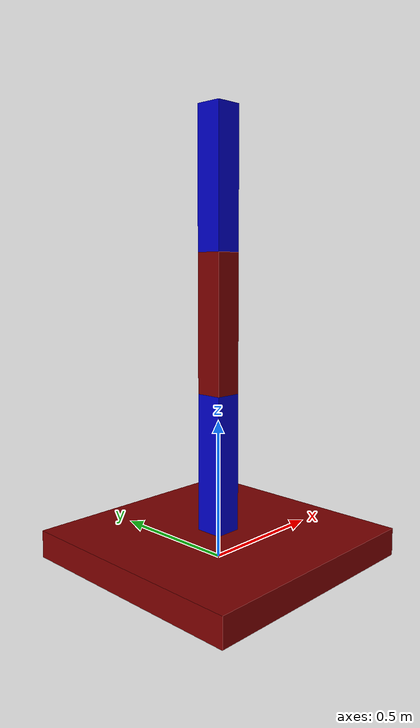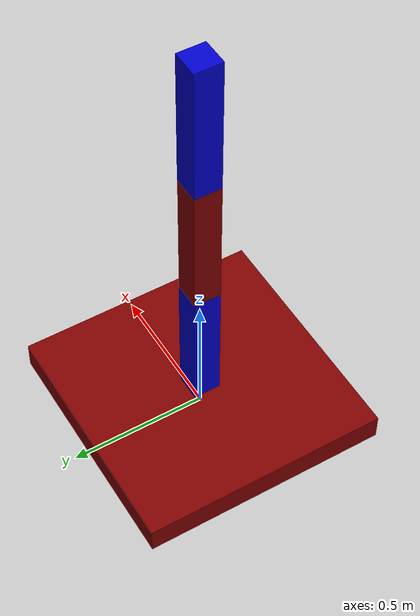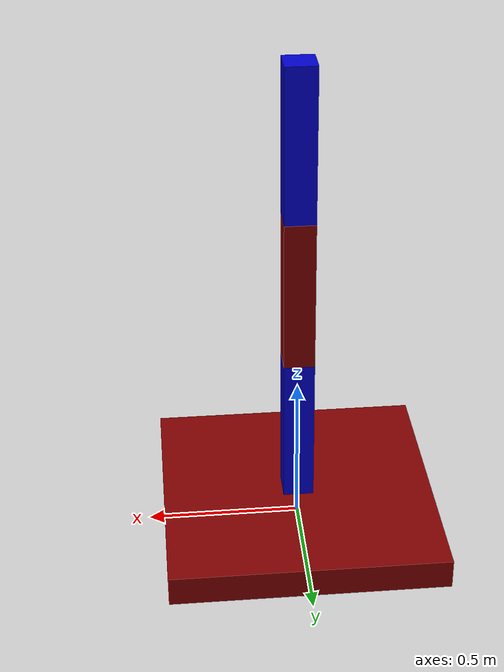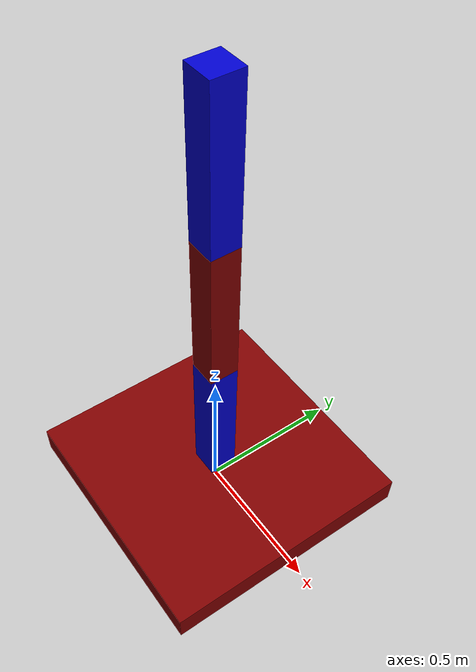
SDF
<?xml version="1.0" ?>

<sdf version="1.9">

    <model name="arm3dof">

      <link name="govde">
        <pose> 0 0 0.05 0 0 0</pose>

        <visual name="v_govde">
          <geometry><box><size>0.9 0.9 0.1</size></box></geometry>
          <material><diffuse>0.5 0 0 1</diffuse></material>
        </visual>

        <collision name="c_govde">
          <geometry><box><size> 0.9 0.9 0.1</size></box></geometry>
        </collision>

        <inertial>
          <mass>50.0</mass>
          <inertia>
            <ixx>1</ixx>
            <ixy>0</ixy>
            <ixz>0</ixz>
            <iyy>1</iyy>
            <iyz>0</iyz>
            <izz>1</izz>
          </inertia>
        </inertial>
      </link>

      <joint name="yere_sabitle" type="fixed">
        <parent>world</parent>
        <child>govde</child>
      </joint>

      <joint name="j1_base_yaw" type="revolute">
        <parent>govde</parent>
        <child>kol_1</child>
        <pose relative_to="govde">0 0 0.05 0 0 0</pose>

        <axis>
          <xyz> 0 0 1</xyz>
          <limit><lower>-3.14</lower><upper>3.14</upper></limit>
          <dynamics><damping>0.5</damping></dynamics>
        </axis>
      </joint>

      <link name="kol_1">
        <pose relative_to="j1_base_yaw">0 0 0.25 0 0 0</pose>

        <visual name="v_kol_1">
          <geometry><box><size>0.1 0.1 0.5</size></box></geometry>
          <material><diffuse>0 0 0.8 1</diffuse></material>
        </visual>

        <collision name="c_kol_1">
          <geometry><box><size>0.1 0.1 0.5</size></box></geometry>
        </collision>

        <inertial>
          <mass>1.0</mass>
          <inertia>
            <ixx>0.02</ixx>
            <ixy>0</ixy>
            <ixz>0</ixz>
            <iyy>0.02</iyy>
            <iyz>0</iyz>
            <izz>0.002</izz>
          </inertia>
        </inertial>
      </link>

      <link name="kol_2">
        <pose relative_to="j2_base_shoulder">0 0 0.25 0 0 0</pose>

        <visual name="v_kol_2">
          <geometry><box><size>0.1 0.1 0.5</size></box></geometry>
          <material><diffuse>0.5 0 0 1</diffuse></material>
        </visual>

        <collision name="c_kol_2">
          <geometry><box><size>0.1 0.1 0.5</size></box></geometry>
        </collision>

        <inertial>
          <mass>1.0</mass>
          <inertia>
            <ixx>0.02</ixx>
            <ixy>0</ixy>
            <ixz>0</ixz>
            <iyy>0.02</iyy>
            <iyz>0</iyz>
            <izz>0.002</izz>
          </inertia>
        </inertial>

      </link>

      <joint name="j2_base_shoulder" type="revolute">
        <parent>kol_1</parent>
        <child>kol_2</child>
        <pose relative_to="kol_1">0 0 0.25 0 0 0</pose>

        <axis>
          <xyz> 0 1 0</xyz>
          <limit><lower>-1.57</lower><upper>1.57</upper></limit>
          <dynamics><damping>0.5</damping></dynamics>
        </axis>

      </joint>

      <link name="kol_3">
        <pose relative_to="j3_base_elbow">0 0 0.25 0 0 0</pose>

        <visual name="v_kol_3">
          <geometry><box><size>0.1 0.1 0.5</size></box></geometry>
          <material><diffuse>0 0 0.8 1</diffuse></material>
        </visual>

        <collision name="c_kol_3">
          <geometry><box><size>0.1 0.1 0.5</size></box></geometry>
        </collision>

        <inertial>
          <mass>1.0</mass>
          <inertia>
            <ixx>0.02</ixx>
            <ixy>0</ixy>
            <ixz>0</ixz>
            <iyy>0.02</iyy>
            <iyz>0</iyz>
            <izz>0.002</izz>
          </inertia>
        </inertial>
      </link>

      <joint name="j3_base_elbow" type="revolute">
        <parent>kol_2</parent>
        <child>kol_3</child>
        <pose relative_to="kol_2">0 0 0.25 0 0 0</pose>

        <axis>
          <xyz> 0 1 0</xyz>
          <limit><lower>-1.57</lower><upper>1.57</upper></limit>
          <dynamics><damping>0.5</damping></dynamics>
        </axis>

      </joint>

      <plugin
        filename="gz-sim-joint-position-controller-system"
        name="gz::sim::systems::JointPositionController">
        <joint_name>j1_base_yaw</joint_name>
        <topic>cmd_pos_j1</topic> <p_gain>200</p_gain>      <i_gain>10</i_gain>       <d_gain>10</d_gain>       </plugin>

      <plugin
        filename="gz-sim-joint-position-controller-system"
        name="gz::sim::systems::JointPositionController">
        <joint_name>j2_base_shoulder</joint_name>
        <topic>cmd_pos_j2</topic>
        <p_gain>5000</p_gain>
        <i_gain>200</i_gain>
        <d_gain>50</d_gain>
      </plugin>

      <plugin
        filename="gz-sim-joint-position-controller-system"
        name="gz::sim::systems::JointPositionController">
        <joint_name>j3_base_elbow</joint_name>
        <topic>cmd_pos_j3</topic>
        <p_gain>1000</p_gain>
        <i_gain>50</i_gain>
        <d_gain>20</d_gain>
      </plugin>

    </model>
</sdf>
